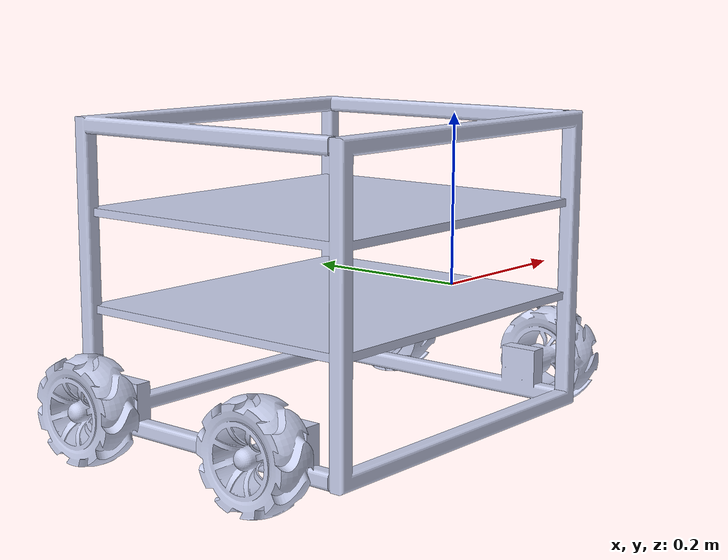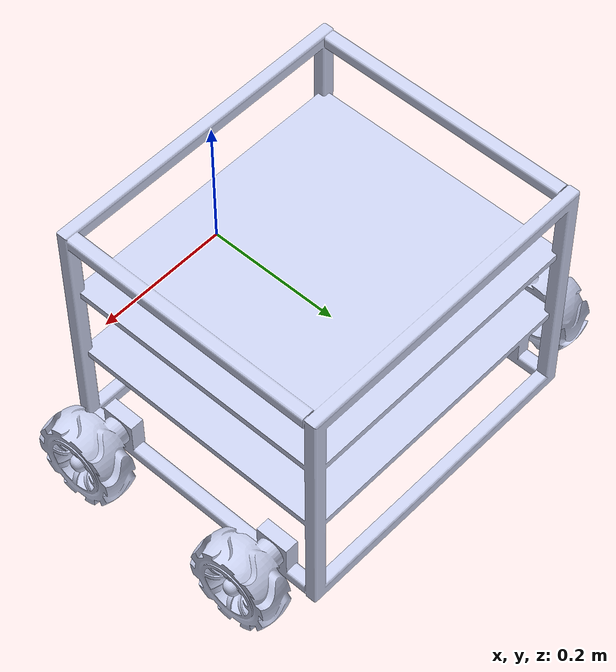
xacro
<?xml version="1.0"?>
<!-- Basic differential drive mobile base -->
<robot xmlns:xacro="http://www.ros.org/wiki/xacro" name="diffdrive_robot">
  <xacro:arg name="prefix" default="" />

  <xacro:include filename="$(find diffdrive_arduino)/urdf/diffbot_description.urdf.xacro" />

  <!-- Import Rviz colors -->
  <xacro:include filename="$(find diffdrive_arduino)/urdf/diffbot.materials.xacro" />

  <!-- Import diffbot ros2_control description -->
  <xacro:include filename="$(find diffdrive_arduino)/ros2_control/diffbot.ros2_control.xacro" />

  <xacro:diffbot prefix="$(arg prefix)" />

  <xacro:diffbot_ros2_control
    name="DiffBot" prefix="$(arg prefix)" />

</robot>

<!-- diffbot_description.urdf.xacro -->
<robot xmlns:xacro="http://www.ros.org/wiki/xacro" name="azad_robot">

  <xacro:macro name="diffbot" params="prefix">

  <link
    name="base_link">
    <inertial>
      <origin
        xyz="-8.6823E-07 0.18 0.00054346"
        rpy="0 0 0" />
      <mass
        value="69.146" />
      <inertia
        ixx="1.6165"
        ixy="3.8762E-18"
        ixz="-5.7828E-18"
        iyy="2.0245"
        iyz="-1.7094E-14"
        izz="1.9087" />
    </inertial>
    <visual>
      <origin
        xyz="0 0 0"
        rpy="0 0 0" />
      <geometry>
        <mesh
          filename="package://Test_5/meshes/base_link.STL" />
      </geometry>
      <material
        name="">
        <color
          rgba="0.79216 0.81961 0.93333 1" />
      </material>
    </visual>
    <collision>
      <origin
        xyz="0 0 0"
        rpy="0 0 0" />
      <geometry>
        <mesh
          filename="package://Test_5/meshes/base_link.STL" />
      </geometry>
    </collision>
  </link>
  <joint
    name="Joint_4"
    type="continuous">
    <origin
      xyz="0 0 0"
      rpy="0 0 0" />
    <parent
      link="base_link" />
    <child
      link="Link_4" />
    <axis
      xyz="1 0 0" />
  </joint>
  <link
    name="Link_1">
    <inertial>
      <origin
        xyz="0.28132 0.315 -0.1475"
        rpy="0 0 0" />
      <mass
        value="0.35363" />
      <inertia
        ixx="0.00078766"
        ixy="1.2402E-09"
        ixz="5.4221E-11"
        iyy="0.00049432"
        iyz="-8.4351E-10"
        izz="0.0004943" />
    </inertial>
    <visual>
      <origin
        xyz="0 0 0"
        rpy="0 0 0" />
      <geometry>
        <mesh
          filename="package://Test_5/meshes/Link_1.STL" />
      </geometry>
      <material
        name="">
        <color
          rgba="0.79216 0.81961 0.93333 1" />
      </material>
    </visual>
    <collision>
      <origin
        xyz="0 0 0"
        rpy="0 0 0" />
      <geometry>
        <mesh
          filename="package://Test_5/meshes/Link_1.STL" />
      </geometry>
    </collision>
  </link>
  <joint
    name="Joint_1"
    type="continuous">
    <origin
      xyz="0 0 0"
      rpy="0 0 0" />
    <parent
      link="base_link" />
    <child
      link="Link_1" />
    <axis
      xyz="-1 0 0" />
  </joint>
  <link
    name="Link_2">
    <inertial>
      <origin
        xyz="0.28132 0.045 -0.1475"
        rpy="0 0 0" />
      <mass
        value="0.35363" />
      <inertia
        ixx="0.00078764"
        ixy="-1.7785E-09"
        ixz="-1.1216E-09"
        iyy="0.00049431"
        iyz="-3.5557E-09"
        izz="0.0004943" />
    </inertial>
    <visual>
      <origin
        xyz="0 0 0"
        rpy="0 0 0" />
      <geometry>
        <mesh
          filename="package://Test_5/meshes/Link_2.STL" />
      </geometry>
      <material
        name="">
        <color
          rgba="0.79216 0.81961 0.93333 1" />
      </material>
    </visual>
    <collision>
      <origin
        xyz="0 0 0"
        rpy="0 0 0" />
      <geometry>
        <mesh
          filename="package://Test_5/meshes/Link_2.STL" />
      </geometry>
    </collision>
  </link>
  <joint
    name="Joint_2"
    type="continuous">
    <origin
      xyz="0 0 0"
      rpy="0 0 0" />
    <parent
      link="base_link" />
    <child
      link="Link_2" />
    <axis
      xyz="-1 0 0" />
  </joint>
  <link
    name="Link_3">
    <inertial>
      <origin
        xyz="-0.28132 0.315 -0.1475"
        rpy="0 0 0" />
      <mass
        value="0.35364" />
      <inertia
        ixx="0.00078765"
        ixy="-2.1417E-09"
        ixz="3.3758E-10"
        iyy="0.00049431"
        iyz="4.9819E-09"
        izz="0.0004943" />
    </inertial>
    <visual>
      <origin
        xyz="0 0 0"
        rpy="0 0 0" />
      <geometry>
        <mesh
          filename="package://Test_5/meshes/Link_3.STL" />
      </geometry>
      <material
        name="">
        <color
          rgba="0.79216 0.81961 0.93333 1" />
      </material>
    </visual>
    <collision>
      <origin
        xyz="0 0 0"
        rpy="0 0 0" />
      <geometry>
        <mesh
          filename="package://Test_5/meshes/Link_3.STL" />
      </geometry>
    </collision>
  </link>
  <joint
    name="Joint_3"
    type="continuous">
    <origin
      xyz="0 0 0"
      rpy="0 0 0" />
    <parent
      link="base_link" />
    <child
      link="Link_3" />
    <axis
      xyz="1 0 0" />
  </joint>
  <link
    name="Link_4">
    <inertial>
      <origin
        xyz="-0.28132 0.044999 -0.1475"
        rpy="0 0 0" />
      <mass
        value="0.35364" />
      <inertia
        ixx="0.00078765"
        ixy="-1.0791E-09"
        ixz="1.8114E-09"
        iyy="0.00049431"
        iyz="-3.4246E-09"
        izz="0.0004943" />
    </inertial>
    <visual>
      <origin
        xyz="0 0 0"
        rpy="0 0 0" />
      <geometry>
        <mesh
          filename="package://Test_5/meshes/Link_4.STL" />
      </geometry>
      <material
        name="">
        <color
          rgba="0.79216 0.81961 0.93333 1" />
      </material>
    </visual>
    <collision>
      <origin
        xyz="0 0 0"
        rpy="0 0 0" />
      <geometry>
        <mesh
          filename="package://Test_5/meshes/Link_4.STL" />
      </geometry>
    </collision>
  </link>

  </xacro:macro>

</robot>
